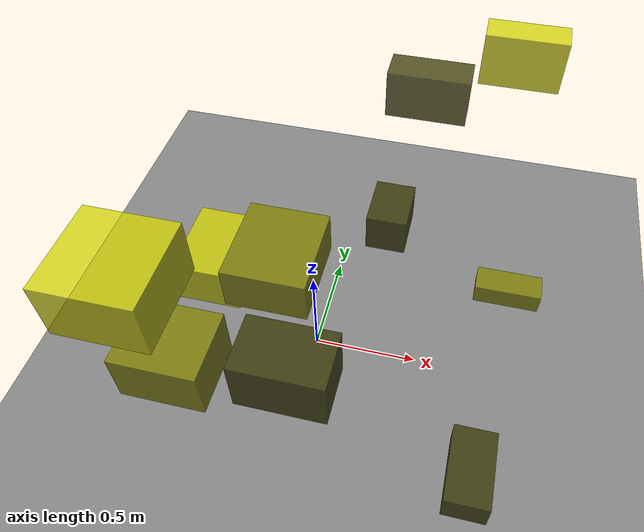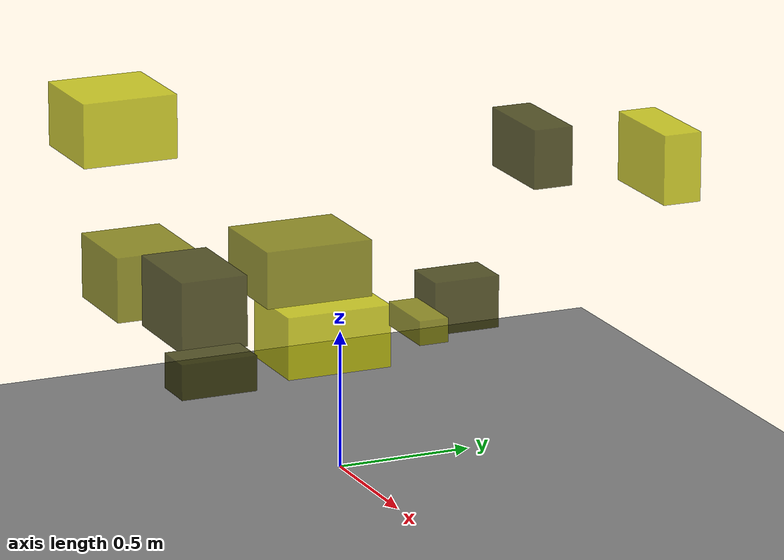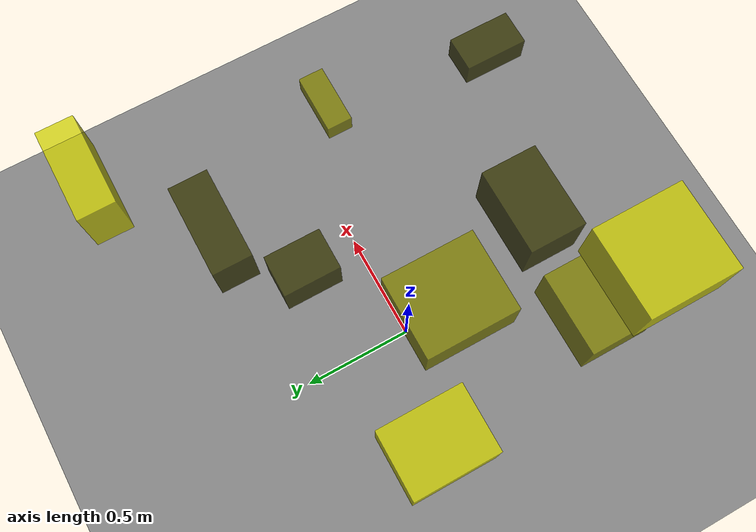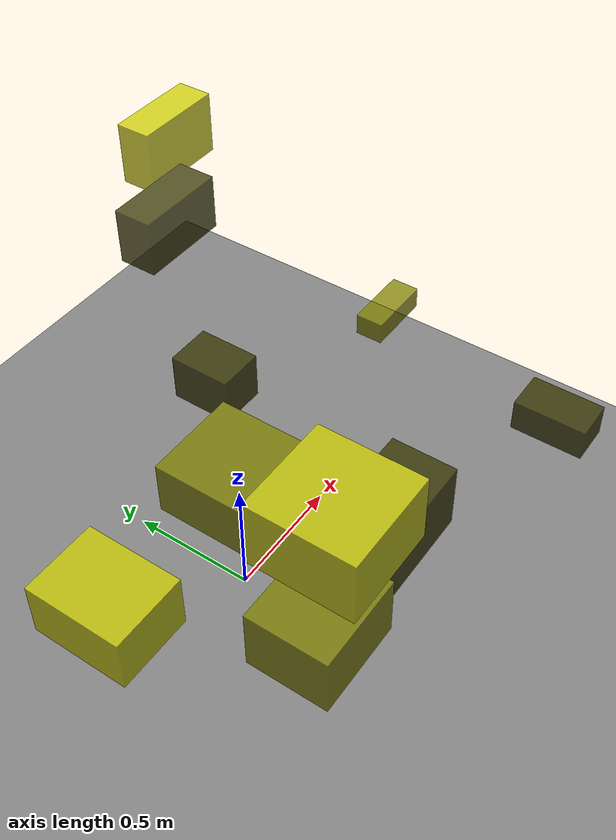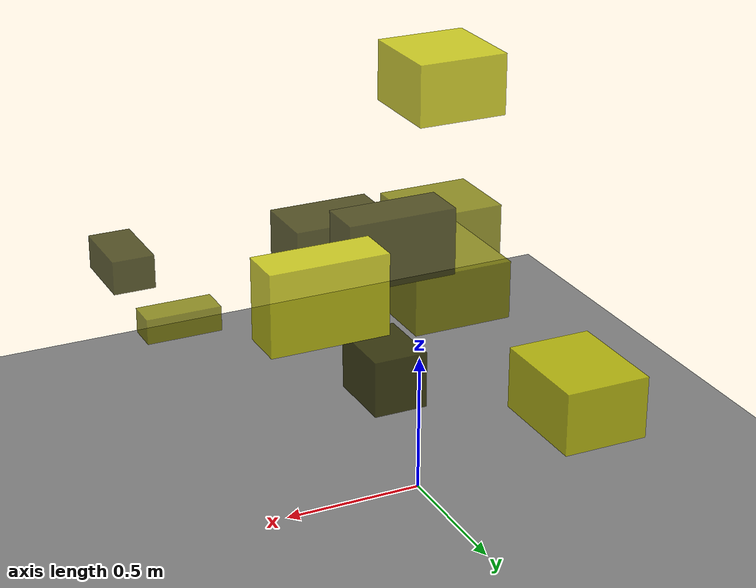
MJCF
<?xml version="1.0"?>
<mujoco model="obstacle_scene">
  <compiler angle="radian" coordinate="local"/>
  <option timestep="0.001" gravity="0 0 -9.81"/>

  <asset>
    <material name="obstacle_mat" rgba="0.8 0.8 0.0 0.8"/>
    <material name="ground_mat" rgba="0.5 0.5 0.5 1"/>
  </asset>

  <worldbody>
    <!-- Ground plane -->
    <geom name="ground" type="plane" size="3 3 0.1" material="ground_mat"/>

    <!-- Obstacles -->
    <body name="obstacle_0" pos="0.382220 0.560565 1.213734">
      <geom name="obs_0" type="box" size="0.170662 0.071876 0.105198" rgba="0.2 0.2 0.0 0.8"/>
    </body>
    <body name="obstacle_1" pos="0.831506 -0.073818 0.784548">
      <geom name="obs_1" type="box" size="0.125688 0.052085 0.042245" rgba="0.5 0.5 0.0 0.8"/>
    </body>
    <body name="obstacle_2" pos="-0.423935 -0.681803 1.243742">
      <geom name="obs_2" type="box" size="0.171883 0.174379 0.115711" rgba="0.8 0.8 0.0 0.8"/>
    </body>
    <body name="obstacle_3" pos="0.064564 -0.577688 0.705311">
      <geom name="obs_3" type="box" size="0.185802 0.121186 0.128015" rgba="0.2 0.2 0.0 0.8"/>
    </body>
    <body name="obstacle_4" pos="-0.388360 -0.605282 0.683420">
      <geom name="obs_4" type="box" size="0.173816 0.147850 0.118124" rgba="0.5 0.5 0.0 0.8"/>
    </body>
    <body name="obstacle_5" pos="-0.533359 0.163383 0.330397">
      <geom name="obs_5" type="box" size="0.158397 0.201214 0.116683" rgba="0.8 0.8 0.0 0.8"/>
    </body>
    <body name="obstacle_6" pos="0.288822 0.317840 0.664960">
      <geom name="obs_6" type="box" size="0.089470 0.120757 0.094286" rgba="0.2 0.2 0.0 0.8"/>
    </body>
    <body name="obstacle_7" pos="-0.113371 -0.104002 0.741343">
      <geom name="obs_7" type="box" size="0.176840 0.198383 0.103026" rgba="0.5 0.5 0.0 0.8"/>
    </body>
    <body name="obstacle_8" pos="0.751597 0.866479 1.237310">
      <geom name="obs_8" type="box" size="0.176831 0.068842 0.122482" rgba="0.8 0.8 0.0 0.8"/>
    </body>
    <body name="obstacle_9" pos="0.779193 -0.809287 0.687480">
      <geom name="obs_9" type="box" size="0.076543 0.134540 0.061599" rgba="0.2 0.2 0.0 0.8"/>
    </body>
  </worldbody>
</mujoco>
